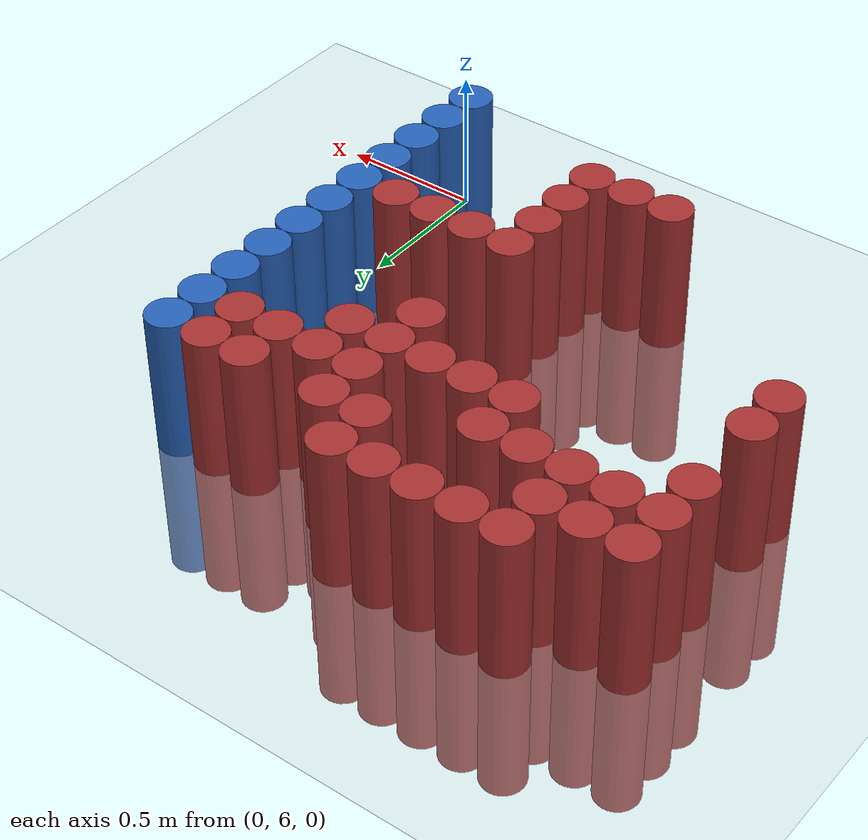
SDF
<sdf version="1.6">
 <world name="default">
  <model name="ground_plane">
   <static>1</static>
   <link name="link">
    <collision name="collision">
     <geometry><plane><normal>0 0 1</normal><size>100 100</size></plane></geometry>
     <surface><friction><ode><mu>100</mu><mu2>50</mu2></ode></friction></surface>
    </collision>
    <visual name="visual">
     <cast_shadows>0</cast_shadows>
     <geometry><plane><normal>0 0 1</normal><size>100 100</size></plane></geometry>
     <material>
      <script><uri>file://media/materials/scripts/gazebo.material</uri><name>Gazebo/Grey</name></script>
     </material>
    </visual>
   </link>
  </model>
  <model name="unit_cylinder_221">
   <static>1</static>
   <pose>-1.725000 6.825000 0.000000 0.000000 0.000000 0.000000</pose>
   <link name="link">
    <inertial>
     <mass>1</mass>
     <inertia><ixx>0.145833</ixx><ixy>0</ixy><ixz>0</ixz><iyy>0.145833</iyy><iyz>0</iyz><izz>0.125</izz></inertia>
    </inertial>
    <collision name="collision">
     <geometry><cylinder><radius>0.075000</radius><length>1</length></cylinder></geometry>
    </collision>
    <visual name="visual">
     <geometry><cylinder><radius>0.075000</radius><length>1</length></cylinder></geometry>
     <material>
      <ambient>0.648000 0.192000 0.192000 1</ambient>
      <diffuse>0.648000 0.192000 0.192000 1</diffuse>
     </material>
     <material>
      <script><name>Gazebo/Grey</name><uri>file://media/materials/scripts/gazebo.material</uri></script>
     </material>
    </visual>
   </link>
  </model>
  <model name="unit_cylinder_222">
   <static>1</static>
   <pose>-1.725000 6.975000 0.000000 0.000000 0.000000 0.000000</pose>
   <link name="link">
    <inertial>
     <mass>1</mass>
     <inertia><ixx>0.145833</ixx><ixy>0</ixy><ixz>0</ixz><iyy>0.145833</iyy><iyz>0</iyz><izz>0.125</izz></inertia>
    </inertial>
    <collision name="collision">
     <geometry><cylinder><radius>0.075000</radius><length>1</length></cylinder></geometry>
    </collision>
    <visual name="visual">
     <geometry><cylinder><radius>0.075000</radius><length>1</length></cylinder></geometry>
     <material>
      <ambient>0.648000 0.192000 0.192000 1</ambient>
      <diffuse>0.648000 0.192000 0.192000 1</diffuse>
     </material>
     <material>
      <script><name>Gazebo/Grey</name><uri>file://media/materials/scripts/gazebo.material</uri></script>
     </material>
    </visual>
   </link>
  </model>
  <model name="unit_cylinder_223">
   <static>1</static>
   <pose>-1.725000 7.275000 0.000000 0.000000 0.000000 0.000000</pose>
   <link name="link">
    <inertial>
     <mass>1</mass>
     <inertia><ixx>0.145833</ixx><ixy>0</ixy><ixz>0</ixz><iyy>0.145833</iyy><iyz>0</iyz><izz>0.125</izz></inertia>
    </inertial>
    <collision name="collision">
     <geometry><cylinder><radius>0.075000</radius><length>1</length></cylinder></geometry>
    </collision>
    <visual name="visual">
     <geometry><cylinder><radius>0.075000</radius><length>1</length></cylinder></geometry>
     <material>
      <ambient>0.648000 0.192000 0.192000 1</ambient>
      <diffuse>0.648000 0.192000 0.192000 1</diffuse>
     </material>
     <material>
      <script><name>Gazebo/Grey</name><uri>file://media/materials/scripts/gazebo.material</uri></script>
     </material>
    </visual>
   </link>
  </model>
  <model name="unit_cylinder_224">
   <static>1</static>
   <pose>-1.725000 7.425000 0.000000 0.000000 0.000000 0.000000</pose>
   <link name="link">
    <inertial>
     <mass>1</mass>
     <inertia><ixx>0.145833</ixx><ixy>0</ixy><ixz>0</ixz><iyy>0.145833</iyy><iyz>0</iyz><izz>0.125</izz></inertia>
    </inertial>
    <collision name="collision">
     <geometry><cylinder><radius>0.075000</radius><length>1</length></cylinder></geometry>
    </collision>
    <visual name="visual">
     <geometry><cylinder><radius>0.075000</radius><length>1</length></cylinder></geometry>
     <material>
      <ambient>0.648000 0.192000 0.192000 1</ambient>
      <diffuse>0.648000 0.192000 0.192000 1</diffuse>
     </material>
     <material>
      <script><name>Gazebo/Grey</name><uri>file://media/materials/scripts/gazebo.material</uri></script>
     </material>
    </visual>
   </link>
  </model>
  <model name="unit_cylinder_225">
   <static>1</static>
   <pose>-1.725000 7.575000 0.000000 0.000000 0.000000 0.000000</pose>
   <link name="link">
    <inertial>
     <mass>1</mass>
     <inertia><ixx>0.145833</ixx><ixy>0</ixy><ixz>0</ixz><iyy>0.145833</iyy><iyz>0</iyz><izz>0.125</izz></inertia>
    </inertial>
    <collision name="collision">
     <geometry><cylinder><radius>0.075000</radius><length>1</length></cylinder></geometry>
    </collision>
    <visual name="visual">
     <geometry><cylinder><radius>0.075000</radius><length>1</length></cylinder></geometry>
     <material>
      <ambient>0.648000 0.192000 0.192000 1</ambient>
      <diffuse>0.648000 0.192000 0.192000 1</diffuse>
     </material>
     <material>
      <script><name>Gazebo/Grey</name><uri>file://media/materials/scripts/gazebo.material</uri></script>
     </material>
    </visual>
   </link>
  </model>
  <model name="unit_cylinder_234">
   <static>1</static>
   <pose>-1.575000 7.425000 0.000000 0.000000 0.000000 0.000000</pose>
   <link name="link">
    <inertial>
     <mass>1</mass>
     <inertia><ixx>0.145833</ixx><ixy>0</ixy><ixz>0</ixz><iyy>0.145833</iyy><iyz>0</iyz><izz>0.125</izz></inertia>
    </inertial>
    <collision name="collision">
     <geometry><cylinder><radius>0.075000</radius><length>1</length></cylinder></geometry>
    </collision>
    <visual name="visual">
     <geometry><cylinder><radius>0.075000</radius><length>1</length></cylinder></geometry>
     <material>
      <ambient>0.648000 0.192000 0.192000 1</ambient>
      <diffuse>0.648000 0.192000 0.192000 1</diffuse>
     </material>
     <material>
      <script><name>Gazebo/Grey</name><uri>file://media/materials/scripts/gazebo.material</uri></script>
     </material>
    </visual>
   </link>
  </model>
  <model name="unit_cylinder_235">
   <static>1</static>
   <pose>-1.575000 7.575000 0.000000 0.000000 0.000000 0.000000</pose>
   <link name="link">
    <inertial>
     <mass>1</mass>
     <inertia><ixx>0.145833</ixx><ixy>0</ixy><ixz>0</ixz><iyy>0.145833</iyy><iyz>0</iyz><izz>0.125</izz></inertia>
    </inertial>
    <collision name="collision">
     <geometry><cylinder><radius>0.075000</radius><length>1</length></cylinder></geometry>
    </collision>
    <visual name="visual">
     <geometry><cylinder><radius>0.075000</radius><length>1</length></cylinder></geometry>
     <material>
      <ambient>0.648000 0.192000 0.192000 1</ambient>
      <diffuse>0.648000 0.192000 0.192000 1</diffuse>
     </material>
     <material>
      <script><name>Gazebo/Grey</name><uri>file://media/materials/scripts/gazebo.material</uri></script>
     </material>
    </visual>
   </link>
  </model>
  <model name="unit_cylinder_242">
   <static>1</static>
   <pose>-1.425000 7.425000 0.000000 0.000000 0.000000 0.000000</pose>
   <link name="link">
    <inertial>
     <mass>1</mass>
     <inertia><ixx>0.145833</ixx><ixy>0</ixy><ixz>0</ixz><iyy>0.145833</iyy><iyz>0</iyz><izz>0.125</izz></inertia>
    </inertial>
    <collision name="collision">
     <geometry><cylinder><radius>0.075000</radius><length>1</length></cylinder></geometry>
    </collision>
    <visual name="visual">
     <geometry><cylinder><radius>0.075000</radius><length>1</length></cylinder></geometry>
     <material>
      <ambient>0.648000 0.192000 0.192000 1</ambient>
      <diffuse>0.648000 0.192000 0.192000 1</diffuse>
     </material>
     <material>
      <script><name>Gazebo/Grey</name><uri>file://media/materials/scripts/gazebo.material</uri></script>
     </material>
    </visual>
   </link>
  </model>
  <model name="unit_cylinder_243">
   <static>1</static>
   <pose>-1.425000 7.575000 0.000000 0.000000 0.000000 0.000000</pose>
   <link name="link">
    <inertial>
     <mass>1</mass>
     <inertia><ixx>0.145833</ixx><ixy>0</ixy><ixz>0</ixz><iyy>0.145833</iyy><iyz>0</iyz><izz>0.125</izz></inertia>
    </inertial>
    <collision name="collision">
     <geometry><cylinder><radius>0.075000</radius><length>1</length></cylinder></geometry>
    </collision>
    <visual name="visual">
     <geometry><cylinder><radius>0.075000</radius><length>1</length></cylinder></geometry>
     <material>
      <ambient>0.648000 0.192000 0.192000 1</ambient>
      <diffuse>0.648000 0.192000 0.192000 1</diffuse>
     </material>
     <material>
      <script><name>Gazebo/Grey</name><uri>file://media/materials/scripts/gazebo.material</uri></script>
     </material>
    </visual>
   </link>
  </model>
  <model name="unit_cylinder_244">
   <static>1</static>
   <pose>-1.425000 7.725000 0.000000 0.000000 0.000000 0.000000</pose>
   <link name="link">
    <inertial>
     <mass>1</mass>
     <inertia><ixx>0.145833</ixx><ixy>0</ixy><ixz>0</ixz><iyy>0.145833</iyy><iyz>0</iyz><izz>0.125</izz></inertia>
    </inertial>
    <collision name="collision">
     <geometry><cylinder><radius>0.075000</radius><length>1</length></cylinder></geometry>
    </collision>
    <visual name="visual">
     <geometry><cylinder><radius>0.075000</radius><length>1</length></cylinder></geometry>
     <material>
      <ambient>0.648000 0.192000 0.192000 1</ambient>
      <diffuse>0.648000 0.192000 0.192000 1</diffuse>
     </material>
     <material>
      <script><name>Gazebo/Grey</name><uri>file://media/materials/scripts/gazebo.material</uri></script>
     </material>
    </visual>
   </link>
  </model>
  <model name="unit_cylinder_251">
   <static>1</static>
   <pose>-1.275000 7.425000 0.000000 0.000000 0.000000 0.000000</pose>
   <link name="link">
    <inertial>
     <mass>1</mass>
     <inertia><ixx>0.145833</ixx><ixy>0</ixy><ixz>0</ixz><iyy>0.145833</iyy><iyz>0</iyz><izz>0.125</izz></inertia>
    </inertial>
    <collision name="collision">
     <geometry><cylinder><radius>0.075000</radius><length>1</length></cylinder></geometry>
    </collision>
    <visual name="visual">
     <geometry><cylinder><radius>0.075000</radius><length>1</length></cylinder></geometry>
     <material>
      <ambient>0.648000 0.192000 0.192000 1</ambient>
      <diffuse>0.648000 0.192000 0.192000 1</diffuse>
     </material>
     <material>
      <script><name>Gazebo/Grey</name><uri>file://media/materials/scripts/gazebo.material</uri></script>
     </material>
    </visual>
   </link>
  </model>
  <model name="unit_cylinder_252">
   <static>1</static>
   <pose>-1.275000 7.725000 0.000000 0.000000 0.000000 0.000000</pose>
   <link name="link">
    <inertial>
     <mass>1</mass>
     <inertia><ixx>0.145833</ixx><ixy>0</ixy><ixz>0</ixz><iyy>0.145833</iyy><iyz>0</iyz><izz>0.125</izz></inertia>
    </inertial>
    <collision name="collision">
     <geometry><cylinder><radius>0.075000</radius><length>1</length></cylinder></geometry>
    </collision>
    <visual name="visual">
     <geometry><cylinder><radius>0.075000</radius><length>1</length></cylinder></geometry>
     <material>
      <ambient>0.648000 0.192000 0.192000 1</ambient>
      <diffuse>0.648000 0.192000 0.192000 1</diffuse>
     </material>
     <material>
      <script><name>Gazebo/Grey</name><uri>file://media/materials/scripts/gazebo.material</uri></script>
     </material>
    </visual>
   </link>
  </model>
  <model name="unit_cylinder_260">
   <static>1</static>
   <pose>-1.125000 7.275000 0.000000 0.000000 0.000000 0.000000</pose>
   <link name="link">
    <inertial>
     <mass>1</mass>
     <inertia><ixx>0.145833</ixx><ixy>0</ixy><ixz>0</ixz><iyy>0.145833</iyy><iyz>0</iyz><izz>0.125</izz></inertia>
    </inertial>
    <collision name="collision">
     <geometry><cylinder><radius>0.075000</radius><length>1</length></cylinder></geometry>
    </collision>
    <visual name="visual">
     <geometry><cylinder><radius>0.075000</radius><length>1</length></cylinder></geometry>
     <material>
      <ambient>0.648000 0.192000 0.192000 1</ambient>
      <diffuse>0.648000 0.192000 0.192000 1</diffuse>
     </material>
     <material>
      <script><name>Gazebo/Grey</name><uri>file://media/materials/scripts/gazebo.material</uri></script>
     </material>
    </visual>
   </link>
  </model>
  <model name="unit_cylinder_261">
   <static>1</static>
   <pose>-1.125000 7.425000 0.000000 0.000000 0.000000 0.000000</pose>
   <link name="link">
    <inertial>
     <mass>1</mass>
     <inertia><ixx>0.145833</ixx><ixy>0</ixy><ixz>0</ixz><iyy>0.145833</iyy><iyz>0</iyz><izz>0.125</izz></inertia>
    </inertial>
    <collision name="collision">
     <geometry><cylinder><radius>0.075000</radius><length>1</length></cylinder></geometry>
    </collision>
    <visual name="visual">
     <geometry><cylinder><radius>0.075000</radius><length>1</length></cylinder></geometry>
     <material>
      <ambient>0.648000 0.192000 0.192000 1</ambient>
      <diffuse>0.648000 0.192000 0.192000 1</diffuse>
     </material>
     <material>
      <script><name>Gazebo/Grey</name><uri>file://media/materials/scripts/gazebo.material</uri></script>
     </material>
    </visual>
   </link>
  </model>
  <model name="unit_cylinder_262">
   <static>1</static>
   <pose>-1.125000 7.725000 0.000000 0.000000 0.000000 0.000000</pose>
   <link name="link">
    <inertial>
     <mass>1</mass>
     <inertia><ixx>0.145833</ixx><ixy>0</ixy><ixz>0</ixz><iyy>0.145833</iyy><iyz>0</iyz><izz>0.125</izz></inertia>
    </inertial>
    <collision name="collision">
     <geometry><cylinder><radius>0.075000</radius><length>1</length></cylinder></geometry>
    </collision>
    <visual name="visual">
     <geometry><cylinder><radius>0.075000</radius><length>1</length></cylinder></geometry>
     <material>
      <ambient>0.648000 0.192000 0.192000 1</ambient>
      <diffuse>0.648000 0.192000 0.192000 1</diffuse>
     </material>
     <material>
      <script><name>Gazebo/Grey</name><uri>file://media/materials/scripts/gazebo.material</uri></script>
     </material>
    </visual>
   </link>
  </model>
  <model name="unit_cylinder_267">
   <static>1</static>
   <pose>-0.975000 6.225000 0.000000 0.000000 0.000000 0.000000</pose>
   <link name="link">
    <inertial>
     <mass>1</mass>
     <inertia><ixx>0.145833</ixx><ixy>0</ixy><ixz>0</ixz><iyy>0.145833</iyy><iyz>0</iyz><izz>0.125</izz></inertia>
    </inertial>
    <collision name="collision">
     <geometry><cylinder><radius>0.075000</radius><length>1</length></cylinder></geometry>
    </collision>
    <visual name="visual">
     <geometry><cylinder><radius>0.075000</radius><length>1</length></cylinder></geometry>
     <material>
      <ambient>0.648000 0.192000 0.192000 1</ambient>
      <diffuse>0.648000 0.192000 0.192000 1</diffuse>
     </material>
     <material>
      <script><name>Gazebo/Grey</name><uri>file://media/materials/scripts/gazebo.material</uri></script>
     </material>
    </visual>
   </link>
  </model>
  <model name="unit_cylinder_268">
   <static>1</static>
   <pose>-0.975000 7.275000 0.000000 0.000000 0.000000 0.000000</pose>
   <link name="link">
    <inertial>
     <mass>1</mass>
     <inertia><ixx>0.145833</ixx><ixy>0</ixy><ixz>0</ixz><iyy>0.145833</iyy><iyz>0</iyz><izz>0.125</izz></inertia>
    </inertial>
    <collision name="collision">
     <geometry><cylinder><radius>0.075000</radius><length>1</length></cylinder></geometry>
    </collision>
    <visual name="visual">
     <geometry><cylinder><radius>0.075000</radius><length>1</length></cylinder></geometry>
     <material>
      <ambient>0.648000 0.192000 0.192000 1</ambient>
      <diffuse>0.648000 0.192000 0.192000 1</diffuse>
     </material>
     <material>
      <script><name>Gazebo/Grey</name><uri>file://media/materials/scripts/gazebo.material</uri></script>
     </material>
    </visual>
   </link>
  </model>
  <model name="unit_cylinder_269">
   <static>1</static>
   <pose>-0.975000 7.725000 0.000000 0.000000 0.000000 0.000000</pose>
   <link name="link">
    <inertial>
     <mass>1</mass>
     <inertia><ixx>0.145833</ixx><ixy>0</ixy><ixz>0</ixz><iyy>0.145833</iyy><iyz>0</iyz><izz>0.125</izz></inertia>
    </inertial>
    <collision name="collision">
     <geometry><cylinder><radius>0.075000</radius><length>1</length></cylinder></geometry>
    </collision>
    <visual name="visual">
     <geometry><cylinder><radius>0.075000</radius><length>1</length></cylinder></geometry>
     <material>
      <ambient>0.648000 0.192000 0.192000 1</ambient>
      <diffuse>0.648000 0.192000 0.192000 1</diffuse>
     </material>
     <material>
      <script><name>Gazebo/Grey</name><uri>file://media/materials/scripts/gazebo.material</uri></script>
     </material>
    </visual>
   </link>
  </model>
  <model name="unit_cylinder_274">
   <static>1</static>
   <pose>-0.825000 6.225000 0.000000 0.000000 0.000000 0.000000</pose>
   <link name="link">
    <inertial>
     <mass>1</mass>
     <inertia><ixx>0.145833</ixx><ixy>0</ixy><ixz>0</ixz><iyy>0.145833</iyy><iyz>0</iyz><izz>0.125</izz></inertia>
    </inertial>
    <collision name="collision">
     <geometry><cylinder><radius>0.075000</radius><length>1</length></cylinder></geometry>
    </collision>
    <visual name="visual">
     <geometry><cylinder><radius>0.075000</radius><length>1</length></cylinder></geometry>
     <material>
      <ambient>0.648000 0.192000 0.192000 1</ambient>
      <diffuse>0.648000 0.192000 0.192000 1</diffuse>
     </material>
     <material>
      <script><name>Gazebo/Grey</name><uri>file://media/materials/scripts/gazebo.material</uri></script>
     </material>
    </visual>
   </link>
  </model>
  <model name="unit_cylinder_275">
   <static>1</static>
   <pose>-0.825000 7.275000 0.000000 0.000000 0.000000 0.000000</pose>
   <link name="link">
    <inertial>
     <mass>1</mass>
     <inertia><ixx>0.145833</ixx><ixy>0</ixy><ixz>0</ixz><iyy>0.145833</iyy><iyz>0</iyz><izz>0.125</izz></inertia>
    </inertial>
    <collision name="collision">
     <geometry><cylinder><radius>0.075000</radius><length>1</length></cylinder></geometry>
    </collision>
    <visual name="visual">
     <geometry><cylinder><radius>0.075000</radius><length>1</length></cylinder></geometry>
     <material>
      <ambient>0.648000 0.192000 0.192000 1</ambient>
      <diffuse>0.648000 0.192000 0.192000 1</diffuse>
     </material>
     <material>
      <script><name>Gazebo/Grey</name><uri>file://media/materials/scripts/gazebo.material</uri></script>
     </material>
    </visual>
   </link>
  </model>
  <model name="unit_cylinder_276">
   <static>1</static>
   <pose>-0.825000 7.575000 0.000000 0.000000 0.000000 0.000000</pose>
   <link name="link">
    <inertial>
     <mass>1</mass>
     <inertia><ixx>0.145833</ixx><ixy>0</ixy><ixz>0</ixz><iyy>0.145833</iyy><iyz>0</iyz><izz>0.125</izz></inertia>
    </inertial>
    <collision name="collision">
     <geometry><cylinder><radius>0.075000</radius><length>1</length></cylinder></geometry>
    </collision>
    <visual name="visual">
     <geometry><cylinder><radius>0.075000</radius><length>1</length></cylinder></geometry>
     <material>
      <ambient>0.648000 0.192000 0.192000 1</ambient>
      <diffuse>0.648000 0.192000 0.192000 1</diffuse>
     </material>
     <material>
      <script><name>Gazebo/Grey</name><uri>file://media/materials/scripts/gazebo.material</uri></script>
     </material>
    </visual>
   </link>
  </model>
  <model name="unit_cylinder_277">
   <static>1</static>
   <pose>-0.825000 7.725000 0.000000 0.000000 0.000000 0.000000</pose>
   <link name="link">
    <inertial>
     <mass>1</mass>
     <inertia><ixx>0.145833</ixx><ixy>0</ixy><ixz>0</ixz><iyy>0.145833</iyy><iyz>0</iyz><izz>0.125</izz></inertia>
    </inertial>
    <collision name="collision">
     <geometry><cylinder><radius>0.075000</radius><length>1</length></cylinder></geometry>
    </collision>
    <visual name="visual">
     <geometry><cylinder><radius>0.075000</radius><length>1</length></cylinder></geometry>
     <material>
      <ambient>0.648000 0.192000 0.192000 1</ambient>
      <diffuse>0.648000 0.192000 0.192000 1</diffuse>
     </material>
     <material>
      <script><name>Gazebo/Grey</name><uri>file://media/materials/scripts/gazebo.material</uri></script>
     </material>
    </visual>
   </link>
  </model>
  <model name="unit_cylinder_281">
   <static>1</static>
   <pose>-0.675000 6.225000 0.000000 0.000000 0.000000 0.000000</pose>
   <link name="link">
    <inertial>
     <mass>1</mass>
     <inertia><ixx>0.145833</ixx><ixy>0</ixy><ixz>0</ixz><iyy>0.145833</iyy><iyz>0</iyz><izz>0.125</izz></inertia>
    </inertial>
    <collision name="collision">
     <geometry><cylinder><radius>0.075000</radius><length>1</length></cylinder></geometry>
    </collision>
    <visual name="visual">
     <geometry><cylinder><radius>0.075000</radius><length>1</length></cylinder></geometry>
     <material>
      <ambient>0.648000 0.192000 0.192000 1</ambient>
      <diffuse>0.648000 0.192000 0.192000 1</diffuse>
     </material>
     <material>
      <script><name>Gazebo/Grey</name><uri>file://media/materials/scripts/gazebo.material</uri></script>
     </material>
    </visual>
   </link>
  </model>
  <model name="unit_cylinder_282">
   <static>1</static>
   <pose>-0.675000 6.375000 0.000000 0.000000 0.000000 0.000000</pose>
   <link name="link">
    <inertial>
     <mass>1</mass>
     <inertia><ixx>0.145833</ixx><ixy>0</ixy><ixz>0</ixz><iyy>0.145833</iyy><iyz>0</iyz><izz>0.125</izz></inertia>
    </inertial>
    <collision name="collision">
     <geometry><cylinder><radius>0.075000</radius><length>1</length></cylinder></geometry>
    </collision>
    <visual name="visual">
     <geometry><cylinder><radius>0.075000</radius><length>1</length></cylinder></geometry>
     <material>
      <ambient>0.648000 0.192000 0.192000 1</ambient>
      <diffuse>0.648000 0.192000 0.192000 1</diffuse>
     </material>
     <material>
      <script><name>Gazebo/Grey</name><uri>file://media/materials/scripts/gazebo.material</uri></script>
     </material>
    </visual>
   </link>
  </model>
  <model name="unit_cylinder_283">
   <static>1</static>
   <pose>-0.675000 6.525000 0.000000 0.000000 0.000000 0.000000</pose>
   <link name="link">
    <inertial>
     <mass>1</mass>
     <inertia><ixx>0.145833</ixx><ixy>0</ixy><ixz>0</ixz><iyy>0.145833</iyy><iyz>0</iyz><izz>0.125</izz></inertia>
    </inertial>
    <collision name="collision">
     <geometry><cylinder><radius>0.075000</radius><length>1</length></cylinder></geometry>
    </collision>
    <visual name="visual">
     <geometry><cylinder><radius>0.075000</radius><length>1</length></cylinder></geometry>
     <material>
      <ambient>0.648000 0.192000 0.192000 1</ambient>
      <diffuse>0.648000 0.192000 0.192000 1</diffuse>
     </material>
     <material>
      <script><name>Gazebo/Grey</name><uri>file://media/materials/scripts/gazebo.material</uri></script>
     </material>
    </visual>
   </link>
  </model>
  <model name="unit_cylinder_284">
   <static>1</static>
   <pose>-0.675000 6.675000 0.000000 0.000000 0.000000 0.000000</pose>
   <link name="link">
    <inertial>
     <mass>1</mass>
     <inertia><ixx>0.145833</ixx><ixy>0</ixy><ixz>0</ixz><iyy>0.145833</iyy><iyz>0</iyz><izz>0.125</izz></inertia>
    </inertial>
    <collision name="collision">
     <geometry><cylinder><radius>0.075000</radius><length>1</length></cylinder></geometry>
    </collision>
    <visual name="visual">
     <geometry><cylinder><radius>0.075000</radius><length>1</length></cylinder></geometry>
     <material>
      <ambient>0.648000 0.192000 0.192000 1</ambient>
      <diffuse>0.648000 0.192000 0.192000 1</diffuse>
     </material>
     <material>
      <script><name>Gazebo/Grey</name><uri>file://media/materials/scripts/gazebo.material</uri></script>
     </material>
    </visual>
   </link>
  </model>
  <model name="unit_cylinder_285">
   <static>1</static>
   <pose>-0.675000 7.125000 0.000000 0.000000 0.000000 0.000000</pose>
   <link name="link">
    <inertial>
     <mass>1</mass>
     <inertia><ixx>0.145833</ixx><ixy>0</ixy><ixz>0</ixz><iyy>0.145833</iyy><iyz>0</iyz><izz>0.125</izz></inertia>
    </inertial>
    <collision name="collision">
     <geometry><cylinder><radius>0.075000</radius><length>1</length></cylinder></geometry>
    </collision>
    <visual name="visual">
     <geometry><cylinder><radius>0.075000</radius><length>1</length></cylinder></geometry>
     <material>
      <ambient>0.648000 0.192000 0.192000 1</ambient>
      <diffuse>0.648000 0.192000 0.192000 1</diffuse>
     </material>
     <material>
      <script><name>Gazebo/Grey</name><uri>file://media/materials/scripts/gazebo.material</uri></script>
     </material>
    </visual>
   </link>
  </model>
  <model name="unit_cylinder_286">
   <static>1</static>
   <pose>-0.675000 7.275000 0.000000 0.000000 0.000000 0.000000</pose>
   <link name="link">
    <inertial>
     <mass>1</mass>
     <inertia><ixx>0.145833</ixx><ixy>0</ixy><ixz>0</ixz><iyy>0.145833</iyy><iyz>0</iyz><izz>0.125</izz></inertia>
    </inertial>
    <collision name="collision">
     <geometry><cylinder><radius>0.075000</radius><length>1</length></cylinder></geometry>
    </collision>
    <visual name="visual">
     <geometry><cylinder><radius>0.075000</radius><length>1</length></cylinder></geometry>
     <material>
      <ambient>0.648000 0.192000 0.192000 1</ambient>
      <diffuse>0.648000 0.192000 0.192000 1</diffuse>
     </material>
     <material>
      <script><name>Gazebo/Grey</name><uri>file://media/materials/scripts/gazebo.material</uri></script>
     </material>
    </visual>
   </link>
  </model>
  <model name="unit_cylinder_287">
   <static>1</static>
   <pose>-0.675000 7.425000 0.000000 0.000000 0.000000 0.000000</pose>
   <link name="link">
    <inertial>
     <mass>1</mass>
     <inertia><ixx>0.145833</ixx><ixy>0</ixy><ixz>0</ixz><iyy>0.145833</iyy><iyz>0</iyz><izz>0.125</izz></inertia>
    </inertial>
    <collision name="collision">
     <geometry><cylinder><radius>0.075000</radius><length>1</length></cylinder></geometry>
    </collision>
    <visual name="visual">
     <geometry><cylinder><radius>0.075000</radius><length>1</length></cylinder></geometry>
     <material>
      <ambient>0.648000 0.192000 0.192000 1</ambient>
      <diffuse>0.648000 0.192000 0.192000 1</diffuse>
     </material>
     <material>
      <script><name>Gazebo/Grey</name><uri>file://media/materials/scripts/gazebo.material</uri></script>
     </material>
    </visual>
   </link>
  </model>
  <model name="unit_cylinder_288">
   <static>1</static>
   <pose>-0.675000 7.575000 0.000000 0.000000 0.000000 0.000000</pose>
   <link name="link">
    <inertial>
     <mass>1</mass>
     <inertia><ixx>0.145833</ixx><ixy>0</ixy><ixz>0</ixz><iyy>0.145833</iyy><iyz>0</iyz><izz>0.125</izz></inertia>
    </inertial>
    <collision name="collision">
     <geometry><cylinder><radius>0.075000</radius><length>1</length></cylinder></geometry>
    </collision>
    <visual name="visual">
     <geometry><cylinder><radius>0.075000</radius><length>1</length></cylinder></geometry>
     <material>
      <ambient>0.648000 0.192000 0.192000 1</ambient>
      <diffuse>0.648000 0.192000 0.192000 1</diffuse>
     </material>
     <material>
      <script><name>Gazebo/Grey</name><uri>file://media/materials/scripts/gazebo.material</uri></script>
     </material>
    </visual>
   </link>
  </model>
  <model name="unit_cylinder_292">
   <static>1</static>
   <pose>-0.525000 6.675000 0.000000 0.000000 0.000000 0.000000</pose>
   <link name="link">
    <inertial>
     <mass>1</mass>
     <inertia><ixx>0.145833</ixx><ixy>0</ixy><ixz>0</ixz><iyy>0.145833</iyy><iyz>0</iyz><izz>0.125</izz></inertia>
    </inertial>
    <collision name="collision">
     <geometry><cylinder><radius>0.075000</radius><length>1</length></cylinder></geometry>
    </collision>
    <visual name="visual">
     <geometry><cylinder><radius>0.075000</radius><length>1</length></cylinder></geometry>
     <material>
      <ambient>0.648000 0.192000 0.192000 1</ambient>
      <diffuse>0.648000 0.192000 0.192000 1</diffuse>
     </material>
     <material>
      <script><name>Gazebo/Grey</name><uri>file://media/materials/scripts/gazebo.material</uri></script>
     </material>
    </visual>
   </link>
  </model>
  <model name="unit_cylinder_293">
   <static>1</static>
   <pose>-0.525000 7.275000 0.000000 0.000000 0.000000 0.000000</pose>
   <link name="link">
    <inertial>
     <mass>1</mass>
     <inertia><ixx>0.145833</ixx><ixy>0</ixy><ixz>0</ixz><iyy>0.145833</iyy><iyz>0</iyz><izz>0.125</izz></inertia>
    </inertial>
    <collision name="collision">
     <geometry><cylinder><radius>0.075000</radius><length>1</length></cylinder></geometry>
    </collision>
    <visual name="visual">
     <geometry><cylinder><radius>0.075000</radius><length>1</length></cylinder></geometry>
     <material>
      <ambient>0.648000 0.192000 0.192000 1</ambient>
      <diffuse>0.648000 0.192000 0.192000 1</diffuse>
     </material>
     <material>
      <script><name>Gazebo/Grey</name><uri>file://media/materials/scripts/gazebo.material</uri></script>
     </material>
    </visual>
   </link>
  </model>
  <model name="unit_cylinder_294">
   <static>1</static>
   <pose>-0.525000 7.425000 0.000000 0.000000 0.000000 0.000000</pose>
   <link name="link">
    <inertial>
     <mass>1</mass>
     <inertia><ixx>0.145833</ixx><ixy>0</ixy><ixz>0</ixz><iyy>0.145833</iyy><iyz>0</iyz><izz>0.125</izz></inertia>
    </inertial>
    <collision name="collision">
     <geometry><cylinder><radius>0.075000</radius><length>1</length></cylinder></geometry>
    </collision>
    <visual name="visual">
     <geometry><cylinder><radius>0.075000</radius><length>1</length></cylinder></geometry>
     <material>
      <ambient>0.648000 0.192000 0.192000 1</ambient>
      <diffuse>0.648000 0.192000 0.192000 1</diffuse>
     </material>
     <material>
      <script><name>Gazebo/Grey</name><uri>file://media/materials/scripts/gazebo.material</uri></script>
     </material>
    </visual>
   </link>
  </model>
  <model name="unit_cylinder_303">
   <static>1</static>
   <pose>-0.375000 6.675000 0.000000 0.000000 0.000000 0.000000</pose>
   <link name="link">
    <inertial>
     <mass>1</mass>
     <inertia><ixx>0.145833</ixx><ixy>0</ixy><ixz>0</ixz><iyy>0.145833</iyy><iyz>0</iyz><izz>0.125</izz></inertia>
    </inertial>
    <collision name="collision">
     <geometry><cylinder><radius>0.075000</radius><length>1</length></cylinder></geometry>
    </collision>
    <visual name="visual">
     <geometry><cylinder><radius>0.075000</radius><length>1</length></cylinder></geometry>
     <material>
      <ambient>0.648000 0.192000 0.192000 1</ambient>
      <diffuse>0.648000 0.192000 0.192000 1</diffuse>
     </material>
     <material>
      <script><name>Gazebo/Grey</name><uri>file://media/materials/scripts/gazebo.material</uri></script>
     </material>
    </visual>
   </link>
  </model>
  <model name="unit_cylinder_304">
   <static>1</static>
   <pose>-0.375000 7.425000 0.000000 0.000000 0.000000 0.000000</pose>
   <link name="link">
    <inertial>
     <mass>1</mass>
     <inertia><ixx>0.145833</ixx><ixy>0</ixy><ixz>0</ixz><iyy>0.145833</iyy><iyz>0</iyz><izz>0.125</izz></inertia>
    </inertial>
    <collision name="collision">
     <geometry><cylinder><radius>0.075000</radius><length>1</length></cylinder></geometry>
    </collision>
    <visual name="visual">
     <geometry><cylinder><radius>0.075000</radius><length>1</length></cylinder></geometry>
     <material>
      <ambient>0.648000 0.192000 0.192000 1</ambient>
      <diffuse>0.648000 0.192000 0.192000 1</diffuse>
     </material>
     <material>
      <script><name>Gazebo/Grey</name><uri>file://media/materials/scripts/gazebo.material</uri></script>
     </material>
    </visual>
   </link>
  </model>
  <model name="unit_cylinder_305">
   <static>1</static>
   <pose>-0.375000 7.575000 0.000000 0.000000 0.000000 0.000000</pose>
   <link name="link">
    <inertial>
     <mass>1</mass>
     <inertia><ixx>0.145833</ixx><ixy>0</ixy><ixz>0</ixz><iyy>0.145833</iyy><iyz>0</iyz><izz>0.125</izz></inertia>
    </inertial>
    <collision name="collision">
     <geometry><cylinder><radius>0.075000</radius><length>1</length></cylinder></geometry>
    </collision>
    <visual name="visual">
     <geometry><cylinder><radius>0.075000</radius><length>1</length></cylinder></geometry>
     <material>
      <ambient>0.648000 0.192000 0.192000 1</ambient>
      <diffuse>0.648000 0.192000 0.192000 1</diffuse>
     </material>
     <material>
      <script><name>Gazebo/Grey</name><uri>file://media/materials/scripts/gazebo.material</uri></script>
     </material>
    </visual>
   </link>
  </model>
  <model name="unit_cylinder_311">
   <static>1</static>
   <pose>-0.225000 6.675000 0.000000 0.000000 0.000000 0.000000</pose>
   <link name="link">
    <inertial>
     <mass>1</mass>
     <inertia><ixx>0.145833</ixx><ixy>0</ixy><ixz>0</ixz><iyy>0.145833</iyy><iyz>0</iyz><izz>0.125</izz></inertia>
    </inertial>
    <collision name="collision">
     <geometry><cylinder><radius>0.075000</radius><length>1</length></cylinder></geometry>
    </collision>
    <visual name="visual">
     <geometry><cylinder><radius>0.075000</radius><length>1</length></cylinder></geometry>
     <material>
      <ambient>0.648000 0.192000 0.192000 1</ambient>
      <diffuse>0.648000 0.192000 0.192000 1</diffuse>
     </material>
     <material>
      <script><name>Gazebo/Grey</name><uri>file://media/materials/scripts/gazebo.material</uri></script>
     </material>
    </visual>
   </link>
  </model>
  <model name="unit_cylinder_312">
   <static>1</static>
   <pose>-0.225000 7.425000 0.000000 0.000000 0.000000 0.000000</pose>
   <link name="link">
    <inertial>
     <mass>1</mass>
     <inertia><ixx>0.145833</ixx><ixy>0</ixy><ixz>0</ixz><iyy>0.145833</iyy><iyz>0</iyz><izz>0.125</izz></inertia>
    </inertial>
    <collision name="collision">
     <geometry><cylinder><radius>0.075000</radius><length>1</length></cylinder></geometry>
    </collision>
    <visual name="visual">
     <geometry><cylinder><radius>0.075000</radius><length>1</length></cylinder></geometry>
     <material>
      <ambient>0.648000 0.192000 0.192000 1</ambient>
      <diffuse>0.648000 0.192000 0.192000 1</diffuse>
     </material>
     <material>
      <script><name>Gazebo/Grey</name><uri>file://media/materials/scripts/gazebo.material</uri></script>
     </material>
    </visual>
   </link>
  </model>
  <model name="unit_cylinder_313">
   <static>1</static>
   <pose>-0.225000 7.575000 0.000000 0.000000 0.000000 0.000000</pose>
   <link name="link">
    <inertial>
     <mass>1</mass>
     <inertia><ixx>0.145833</ixx><ixy>0</ixy><ixz>0</ixz><iyy>0.145833</iyy><iyz>0</iyz><izz>0.125</izz></inertia>
    </inertial>
    <collision name="collision">
     <geometry><cylinder><radius>0.075000</radius><length>1</length></cylinder></geometry>
    </collision>
    <visual name="visual">
     <geometry><cylinder><radius>0.075000</radius><length>1</length></cylinder></geometry>
     <material>
      <ambient>0.648000 0.192000 0.192000 1</ambient>
      <diffuse>0.648000 0.192000 0.192000 1</diffuse>
     </material>
     <material>
      <script><name>Gazebo/Grey</name><uri>file://media/materials/scripts/gazebo.material</uri></script>
     </material>
    </visual>
   </link>
  </model>
  <model name="unit_cylinder_327">
   <static>1</static>
   <pose>-0.075000 6.075000 0.000000 0.000000 0.000000 0.000000</pose>
   <link name="link">
    <inertial>
     <mass>1</mass>
     <inertia><ixx>0.145833</ixx><ixy>0</ixy><ixz>0</ixz><iyy>0.145833</iyy><iyz>0</iyz><izz>0.125</izz></inertia>
    </inertial>
    <collision name="collision">
     <geometry><cylinder><radius>0.075000</radius><length>1</length></cylinder></geometry>
    </collision>
    <visual name="visual">
     <geometry><cylinder><radius>0.075000</radius><length>1</length></cylinder></geometry>
     <material>
      <ambient>0.152000 0.379000 0.720000 1</ambient>
      <diffuse>0.152000 0.379000 0.720000 1</diffuse>
     </material>
     <material>
      <script><name>Gazebo/Grey</name><uri>file://media/materials/scripts/gazebo.material</uri></script>
     </material>
    </visual>
   </link>
  </model>
  <model name="unit_cylinder_328">
   <static>1</static>
   <pose>-0.075000 6.225000 0.000000 0.000000 0.000000 0.000000</pose>
   <link name="link">
    <inertial>
     <mass>1</mass>
     <inertia><ixx>0.145833</ixx><ixy>0</ixy><ixz>0</ixz><iyy>0.145833</iyy><iyz>0</iyz><izz>0.125</izz></inertia>
    </inertial>
    <collision name="collision">
     <geometry><cylinder><radius>0.075000</radius><length>1</length></cylinder></geometry>
    </collision>
    <visual name="visual">
     <geometry><cylinder><radius>0.075000</radius><length>1</length></cylinder></geometry>
     <material>
      <ambient>0.152000 0.379000 0.720000 1</ambient>
      <diffuse>0.152000 0.379000 0.720000 1</diffuse>
     </material>
     <material>
      <script><name>Gazebo/Grey</name><uri>file://media/materials/scripts/gazebo.material</uri></script>
     </material>
    </visual>
   </link>
  </model>
  <model name="unit_cylinder_329">
   <static>1</static>
   <pose>-0.075000 6.375000 0.000000 0.000000 0.000000 0.000000</pose>
   <link name="link">
    <inertial>
     <mass>1</mass>
     <inertia><ixx>0.145833</ixx><ixy>0</ixy><ixz>0</ixz><iyy>0.145833</iyy><iyz>0</iyz><izz>0.125</izz></inertia>
    </inertial>
    <collision name="collision">
     <geometry><cylinder><radius>0.075000</radius><length>1</length></cylinder></geometry>
    </collision>
    <visual name="visual">
     <geometry><cylinder><radius>0.075000</radius><length>1</length></cylinder></geometry>
     <material>
      <ambient>0.152000 0.379000 0.720000 1</ambient>
      <diffuse>0.152000 0.379000 0.720000 1</diffuse>
     </material>
     <material>
      <script><name>Gazebo/Grey</name><uri>file://media/materials/scripts/gazebo.material</uri></script>
     </material>
    </visual>
   </link>
  </model>
  <model name="unit_cylinder_330">
   <static>1</static>
   <pose>-0.075000 6.525000 0.000000 0.000000 0.000000 0.000000</pose>
   <link name="link">
    <inertial>
     <mass>1</mass>
     <inertia><ixx>0.145833</ixx><ixy>0</ixy><ixz>0</ixz><iyy>0.145833</iyy><iyz>0</iyz><izz>0.125</izz></inertia>
    </inertial>
    <collision name="collision">
     <geometry><cylinder><radius>0.075000</radius><length>1</length></cylinder></geometry>
    </collision>
    <visual name="visual">
     <geometry><cylinder><radius>0.075000</radius><length>1</length></cylinder></geometry>
     <material>
      <ambient>0.152000 0.379000 0.720000 1</ambient>
      <diffuse>0.152000 0.379000 0.720000 1</diffuse>
     </material>
     <material>
      <script><name>Gazebo/Grey</name><uri>file://media/materials/scripts/gazebo.material</uri></script>
     </material>
    </visual>
   </link>
  </model>
  <model name="unit_cylinder_331">
   <static>1</static>
   <pose>-0.075000 6.675000 0.000000 0.000000 0.000000 0.000000</pose>
   <link name="link">
    <inertial>
     <mass>1</mass>
     <inertia><ixx>0.145833</ixx><ixy>0</ixy><ixz>0</ixz><iyy>0.145833</iyy><iyz>0</iyz><izz>0.125</izz></inertia>
    </inertial>
    <collision name="collision">
     <geometry><cylinder><radius>0.075000</radius><length>1</length></cylinder></geometry>
    </collision>
    <visual name="visual">
     <geometry><cylinder><radius>0.075000</radius><length>1</length></cylinder></geometry>
     <material>
      <ambient>0.152000 0.379000 0.720000 1</ambient>
      <diffuse>0.152000 0.379000 0.720000 1</diffuse>
     </material>
     <material>
      <script><name>Gazebo/Grey</name><uri>file://media/materials/scripts/gazebo.material</uri></script>
     </material>
    </visual>
   </link>
  </model>
  <model name="unit_cylinder_332">
   <static>1</static>
   <pose>-0.075000 6.825000 0.000000 0.000000 0.000000 0.000000</pose>
   <link name="link">
    <inertial>
     <mass>1</mass>
     <inertia><ixx>0.145833</ixx><ixy>0</ixy><ixz>0</ixz><iyy>0.145833</iyy><iyz>0</iyz><izz>0.125</izz></inertia>
    </inertial>
    <collision name="collision">
     <geometry><cylinder><radius>0.075000</radius><length>1</length></cylinder></geometry>
    </collision>
    <visual name="visual">
     <geometry><cylinder><radius>0.075000</radius><length>1</length></cylinder></geometry>
     <material>
      <ambient>0.152000 0.379000 0.720000 1</ambient>
      <diffuse>0.152000 0.379000 0.720000 1</diffuse>
     </material>
     <material>
      <script><name>Gazebo/Grey</name><uri>file://media/materials/scripts/gazebo.material</uri></script>
     </material>
    </visual>
   </link>
  </model>
  <model name="unit_cylinder_333">
   <static>1</static>
   <pose>-0.075000 6.975000 0.000000 0.000000 0.000000 0.000000</pose>
   <link name="link">
    <inertial>
     <mass>1</mass>
     <inertia><ixx>0.145833</ixx><ixy>0</ixy><ixz>0</ixz><iyy>0.145833</iyy><iyz>0</iyz><izz>0.125</izz></inertia>
    </inertial>
    <collision name="collision">
     <geometry><cylinder><radius>0.075000</radius><length>1</length></cylinder></geometry>
    </collision>
    <visual name="visual">
     <geometry><cylinder><radius>0.075000</radius><length>1</length></cylinder></geometry>
     <material>
      <ambient>0.152000 0.379000 0.720000 1</ambient>
      <diffuse>0.152000 0.379000 0.720000 1</diffuse>
     </material>
     <material>
      <script><name>Gazebo/Grey</name><uri>file://media/materials/scripts/gazebo.material</uri></script>
     </material>
    </visual>
   </link>
  </model>
  <model name="unit_cylinder_334">
   <static>1</static>
   <pose>-0.075000 7.125000 0.000000 0.000000 0.000000 0.000000</pose>
   <link name="link">
    <inertial>
     <mass>1</mass>
     <inertia><ixx>0.145833</ixx><ixy>0</ixy><ixz>0</ixz><iyy>0.145833</iyy><iyz>0</iyz><izz>0.125</izz></inertia>
    </inertial>
    <collision name="collision">
     <geometry><cylinder><radius>0.075000</radius><length>1</length></cylinder></geometry>
    </collision>
    <visual name="visual">
     <geometry><cylinder><radius>0.075000</radius><length>1</length></cylinder></geometry>
     <material>
      <ambient>0.152000 0.379000 0.720000 1</ambient>
      <diffuse>0.152000 0.379000 0.720000 1</diffuse>
     </material>
     <material>
      <script><name>Gazebo/Grey</name><uri>file://media/materials/scripts/gazebo.material</uri></script>
     </material>
    </visual>
   </link>
  </model>
  <model name="unit_cylinder_335">
   <static>1</static>
   <pose>-0.075000 7.275000 0.000000 0.000000 0.000000 0.000000</pose>
   <link name="link">
    <inertial>
     <mass>1</mass>
     <inertia><ixx>0.145833</ixx><ixy>0</ixy><ixz>0</ixz><iyy>0.145833</iyy><iyz>0</iyz><izz>0.125</izz></inertia>
    </inertial>
    <collision name="collision">
     <geometry><cylinder><radius>0.075000</radius><length>1</length></cylinder></geometry>
    </collision>
    <visual name="visual">
     <geometry><cylinder><radius>0.075000</radius><length>1</length></cylinder></geometry>
     <material>
      <ambient>0.152000 0.379000 0.720000 1</ambient>
      <diffuse>0.152000 0.379000 0.720000 1</diffuse>
     </material>
     <material>
      <script><name>Gazebo/Grey</name><uri>file://media/materials/scripts/gazebo.material</uri></script>
     </material>
    </visual>
   </link>
  </model>
  <model name="unit_cylinder_336">
   <static>1</static>
   <pose>-0.075000 7.425000 0.000000 0.000000 0.000000 0.000000</pose>
   <link name="link">
    <inertial>
     <mass>1</mass>
     <inertia><ixx>0.145833</ixx><ixy>0</ixy><ixz>0</ixz><iyy>0.145833</iyy><iyz>0</iyz><izz>0.125</izz></inertia>
    </inertial>
    <collision name="collision">
     <geometry><cylinder><radius>0.075000</radius><length>1</length></cylinder></geometry>
    </collision>
    <visual name="visual">
     <geometry><cylinder><radius>0.075000</radius><length>1</length></cylinder></geometry>
     <material>
      <ambient>0.152000 0.379000 0.720000 1</ambient>
      <diffuse>0.152000 0.379000 0.720000 1</diffuse>
     </material>
     <material>
      <script><name>Gazebo/Grey</name><uri>file://media/materials/scripts/gazebo.material</uri></script>
     </material>
    </visual>
   </link>
  </model>
  <model name="unit_cylinder_337">
   <static>1</static>
   <pose>-0.075000 7.575000 0.000000 0.000000 0.000000 0.000000</pose>
   <link name="link">
    <inertial>
     <mass>1</mass>
     <inertia><ixx>0.145833</ixx><ixy>0</ixy><ixz>0</ixz><iyy>0.145833</iyy><iyz>0</iyz><izz>0.125</izz></inertia>
    </inertial>
    <collision name="collision">
     <geometry><cylinder><radius>0.075000</radius><length>1</length></cylinder></geometry>
    </collision>
    <visual name="visual">
     <geometry><cylinder><radius>0.075000</radius><length>1</length></cylinder></geometry>
     <material>
      <ambient>0.152000 0.379000 0.720000 1</ambient>
      <diffuse>0.152000 0.379000 0.720000 1</diffuse>
     </material>
     <material>
      <script><name>Gazebo/Grey</name><uri>file://media/materials/scripts/gazebo.material</uri></script>
     </material>
    </visual>
   </link>
  </model>
 </world>
</sdf>
